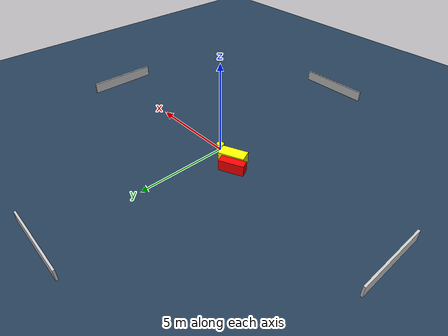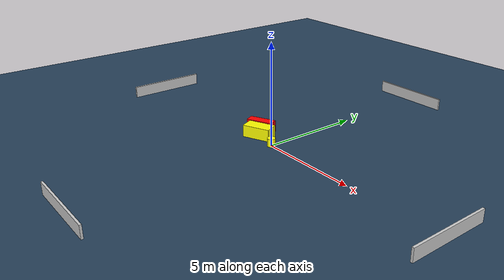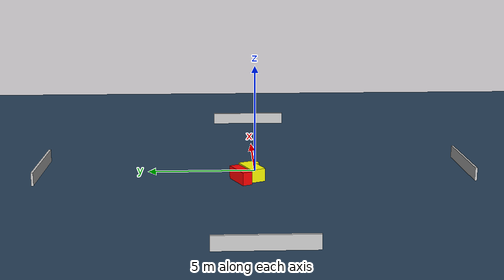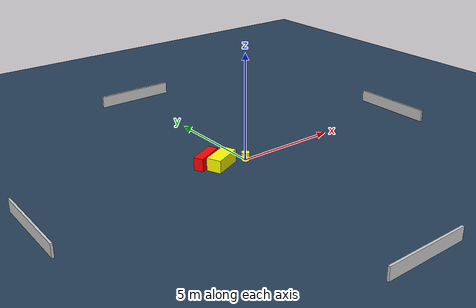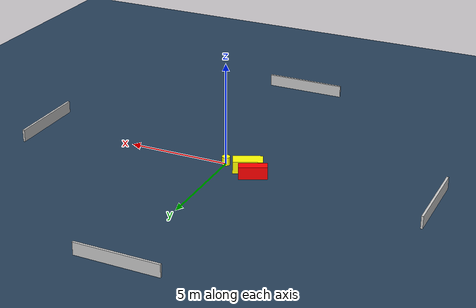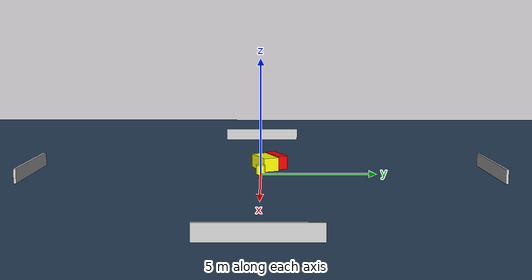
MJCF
<?xml version="1.0" ?>
<mujoco model="generated_environment">
  <option timestep="0.01" integrator="RK4" cone="elliptic"/>
  <default>
    <geom density="1"/>
  </default>
  <asset>
    <texture builtin="gradient" height="3072" name="skybox" rgb1="0.3 0.5 0.7" rgb2="0 0 0" type="skybox" width="512"/>
    <texture builtin="checker" height="300" name="groundplane" rgb1="0.2 0.3 0.4" rgb2="0.1 0.2 0.3" type="2d" width="300"/>
    <material name="groundplane" reflectance="0.2" texrepeat="5 5" texture="groundplane"/>
  </asset>
  <worldbody>
    <light dir="0 0 -1" directional="true" pos="0 0 1.5"/>
    <geom condim="3" friction="0.5 0.005 0.001" material="groundplane" name="floor" pos="0 0 0" size="0 0 0.05" type="plane"/>
    <body name="walls">
      <geom name="wall_1" condim="4" pos="-10.0 0.0 0.3" rgba="0.800000011920929 0.800000011920929 0.800000011920929 1.0" size="0.05 2.0 0.3" type="box"/>
      <geom name="wall_2" condim="4" pos="10.0 0.0 0.3" rgba="0.800000011920929 0.800000011920929 0.800000011920929 1.0" size="0.05 2.0 0.3" type="box"/>
      <geom name="wall_3" condim="4" pos="0.0 -10.0 0.3" rgba="0.800000011920929 0.800000011920929 0.800000011920929 1.0" size="2.0 0.05 0.3" type="box"/>
      <geom name="wall_4" condim="4" pos="0.0 10.0 0.3" rgba="0.800000011920929 0.800000011920929 0.800000011920929 1.0" size="2.0 0.05 0.3" type="box"/>
    </body>
    <body name="robot">
      <joint name="joint_x" type="slide" pos="0 0 0" axis="1 0 0"/>
      <joint name="joint_y" type="slide" pos="0 0 0" axis="0 1 0"/>
      <geom name="robot" type="cylinder" pos="0.0 0.0 0.2" size="0.2 0.2 0.0" mass="5.0" friction="1.0 0.005 0.0001" condim="4" rgba="1.0 1.0 0.0 1.0"/>
    </body>
    <body name="obstacle_1_movable">
      <geom name="obstacle_1_movable" condim="4" pos="-1.1966275995055045 0.18592556369023056 0.3" euler="0 0 113.71757736927648" friction="0.0 0.005 0.001" rgba="1.0 1.0 0.0 1.0" size="0.3436358146483115 0.6994171685024734 0.3" type="box" mass="0.1"/>
      <joint type="free"/>
    </body>
    <body name="obstacle_2_static">
      <geom name="obstacle_2_static" condim="4" pos="-1.6870315876419242 0.6930185837178111 0.3" euler="0 0 205.32206820991553" friction="0.0 0.005 0.001" rgba="1.0 0.0 0.0 1.0" size="0.6721021095553024 0.23116029772968408 0.3" type="box"/>
    </body>
  </worldbody>
  <actuator>
    <motor name="actuator_x" joint="joint_x" gear="1" ctrlrange="-1 1"/>
    <motor name="actuator_y" joint="joint_y" gear="1" ctrlrange="-1 1"/>
  </actuator>
</mujoco>
